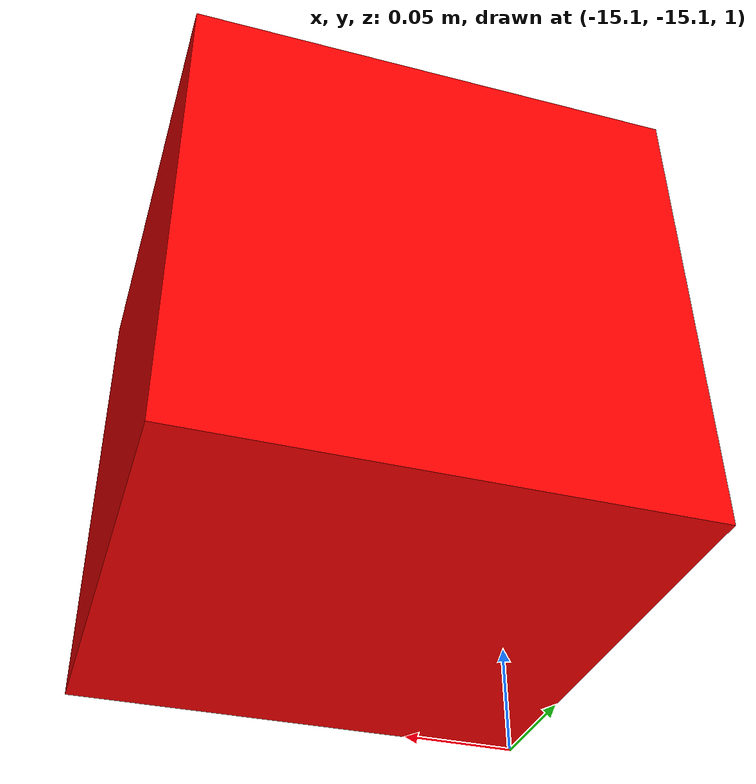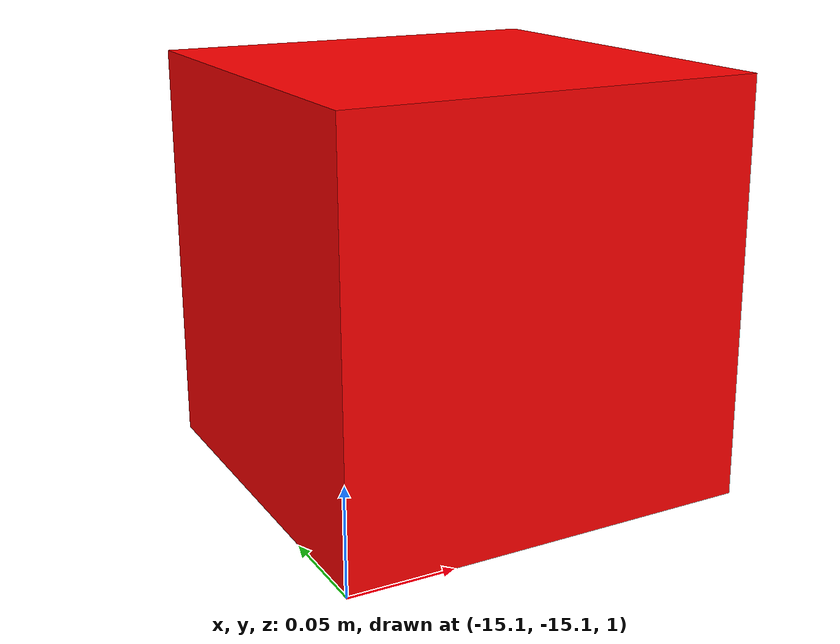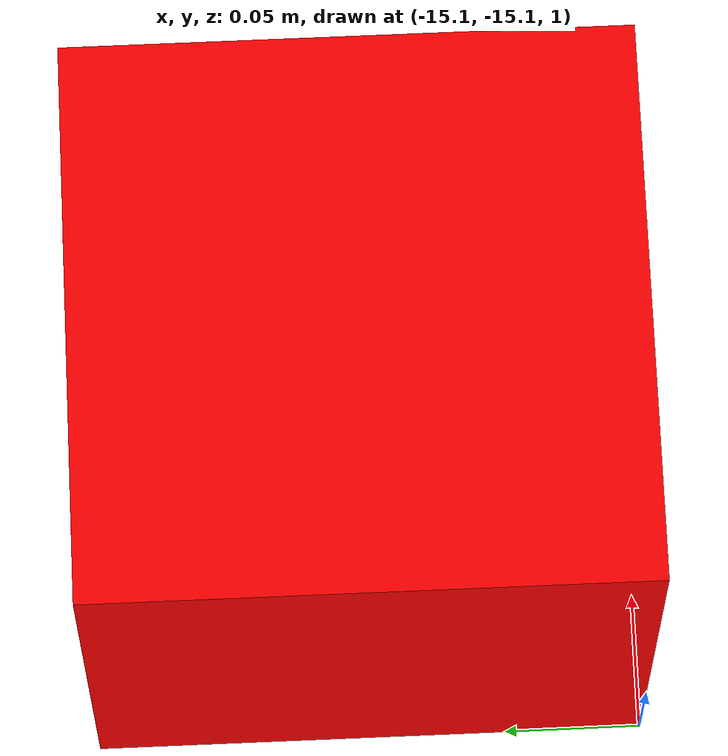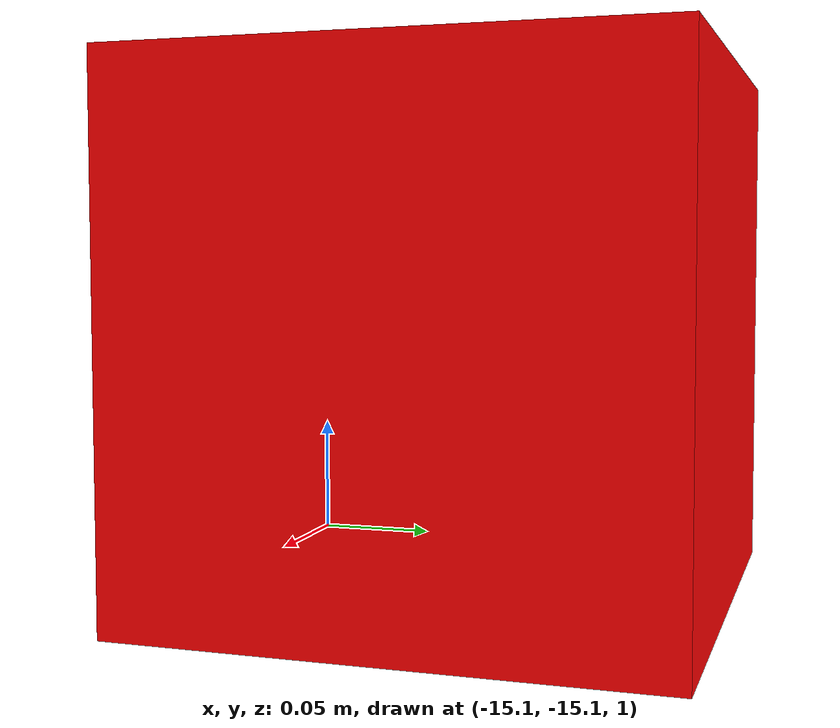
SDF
<?xml version='1.0'?>
<sdf version="1.4">
  <model name="source">
<pose>-15 -15 0.1 0 0 0</pose>
    <static>true</static>
    <link name="link">
      <inertial>
        <mass>1.0</mass>
        <inertia> <!-- inertias are tricky to compute -->
          <!-- http://gazebosim.org/tutorials?tut=inertia&cat=build_robot -->
          <ixx>0.083</ixx>       <!-- for a box: ixx = 0.083 * mass * (y*y + z*z) -->
          <ixy>0.0</ixy>         <!-- for a box: ixy = 0 -->
          <ixz>0.0</ixz>         <!-- for a box: ixz = 0 -->
          <iyy>0.083</iyy>       <!-- for a box: iyy = 0.083 * mass * (x*x + z*z) -->
          <iyz>0.0</iyz>         <!-- for a box: iyz = 0 -->
          <izz>0.083</izz>       <!-- for a box: izz = 0.083 * mass * (x*x + y*y) -->
        </inertia>
      </inertial>
      <collision name="collision">
        <pose> 0 0 0 0 0 0</pose>
        <geometry>
          <box>
            <size>0.1 0.1 0.1</size>
          </box>
        </geometry>
      </collision>
      <visual name="visual">
        <pose> 0 0 1. 0 0 0</pose>
        <geometry>
          <box>
            <size>0.2 0.2 0.2</size>
          </box>
        </geometry>
        <material>
          <ambient>1.0 0 0 1.0</ambient>
					<diffuse>1.0 0 0 1.0</diffuse>
        </material>
      </visual>
      <sensor name="radiation_source" type="radiation_source">
        <always_on> 1 </always_on>
        <update_rate> 1.0 </update_rate>
        <topic>source_0/alpha</topic>
       <plugin name="radiation_source_plugin" filename="libradiation_source_plugin.so"/>

      </sensor>

    </link>

  </model>

</sdf>
